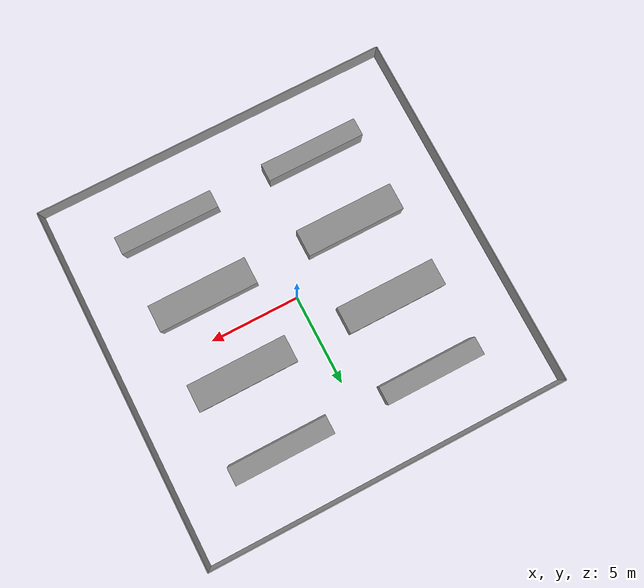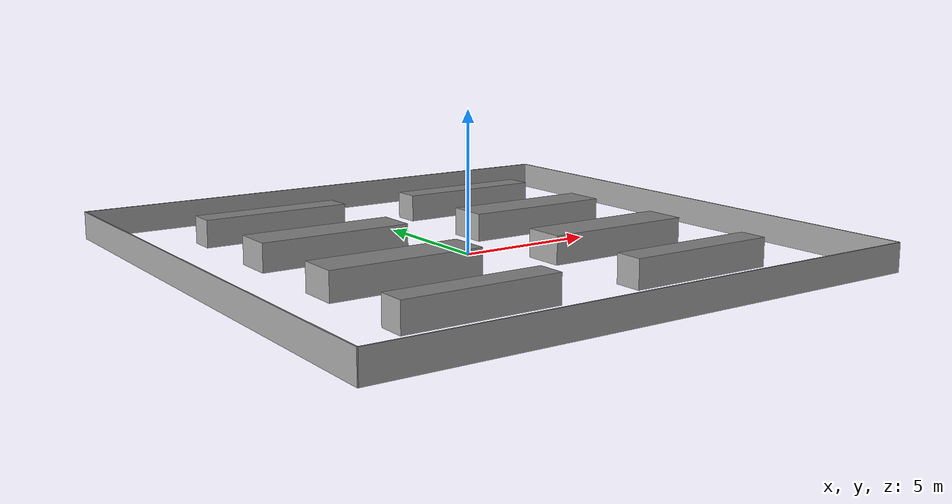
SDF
<?xml version='1.0'?>
<sdf version='1.5'>
  <model name='project_wall'>
    <pose frame=''>0 0 0 0 0 0</pose>
    <link name='Wall_1'>
      <collision name='Wall_1_Collision'>
        <geometry>
          <box>
            <size>20 0.05 1</size>
          </box>
        </geometry>
        <pose frame=''>0 0 0.5 0 0 0</pose>
        <surface>
          <friction>
            <ode>
              <mu>0</mu>
              <mu2>0</mu2>
              <slip1>0</slip1>
              <slip2>0</slip2>
            </ode>
          </friction>
        </surface>
      </collision>
      <visual name='Wall_1_Visual'>
        <pose frame=''>0 0 0.5 0 0 0</pose>
        <geometry>
          <box>
            <size>20 0.05 1</size>
          </box>
        </geometry>
        <material>
          <script>
            <uri>file://media/materials/scripts/gazebo.material</uri>
            <name>Gazebo/Grey</name>
          </script>
          <ambient>1 1 1 1</ambient>
        </material>
      </visual>
      <pose frame=''>0 10 0 0 0 0</pose>
    </link>
    <link name='Wall_2'>
      <collision name='Wall_2_Collision'>
        <geometry>
          <box>
            <size>20 0.05 1</size>
          </box>
        </geometry>
        <pose frame=''>0 0 0.5 0 0 0</pose>
        <surface>
          <friction>
            <ode>
              <mu>0</mu>
              <mu2>0</mu2>
              <slip1>0</slip1>
              <slip2>0</slip2>
            </ode>
          </friction>
        </surface>
      </collision>
      <visual name='Wall_2_Visual'>
        <pose frame=''>0 0 0.5 0 0 0</pose>
        <geometry>
          <box>
            <size>20 0.05 1</size>
          </box>
        </geometry>
        <material>
          <script>
            <uri>file://media/materials/scripts/gazebo.material</uri>
            <name>Gazebo/Grey</name>
          </script>
          <ambient>1 1 1 1</ambient>
        </material>
      </visual>
      <pose frame=''>0 -10 0 0 0 0</pose>
    </link>
    <link name='Wall_3'>
      <collision name='Wall_3_Collision'>
        <geometry>
          <box>
            <size>20 0.05 1</size>
          </box>
        </geometry>
        <pose frame=''>0 0 0.5 0 0 0</pose>
        <surface>
          <friction>
            <ode>
              <mu>0</mu>
              <mu2>0</mu2>
              <slip1>0</slip1>
              <slip2>0</slip2>
            </ode>
          </friction>
        </surface>
      </collision>
      <visual name='Wall_3_Visual'>
        <pose frame=''>0 0 0.5 0 0 0</pose>
        <geometry>
          <box>
            <size>20 0.05 1</size>
          </box>
        </geometry>
        <material>
          <script>
            <uri>file://media/materials/scripts/gazebo.material</uri>
            <name>Gazebo/Grey</name>
          </script>
          <ambient>1 1 1 1</ambient>
        </material>
      </visual>
      <pose frame=''>10 0 0 0 0 1.5708</pose>
    </link>
    <link name='Wall_4'>
      <collision name='Wall_4_Collision'>
        <geometry>
          <box>
            <size>20 0.05 1</size>
          </box>
        </geometry>
        <pose frame=''>0 0 0.5 0 0 0</pose>
        <surface>
          <friction>
            <ode>
              <mu>0</mu>
              <mu2>0</mu2>
              <slip1>0</slip1>
              <slip2>0</slip2>
            </ode>
          </friction>
        </surface>
      </collision>
      <visual name='Wall_4_Visual'>
        <pose frame=''>0 0 0.5 0 0 0</pose>
        <geometry>
          <box>
            <size>20 0.05 1</size>
          </box>
        </geometry>
        <material>
          <script>
            <uri>file://media/materials/scripts/gazebo.material</uri>
            <name>Gazebo/Grey</name>
          </script>
          <ambient>1 1 1 1</ambient>
        </material>
      </visual>
      <pose frame=''>-10 0 0 0 0 1.5708</pose>
    </link>

    <!-- Shelves -->
    <link name='shelf_1'>
      <collision name='shelf_1_Collision'>
        <geometry>
          <box>
            <size>5.5 1 1</size>
          </box>
        </geometry>
        <pose frame=''>0 0 0.5 0 0 0</pose>
        <surface>
          <friction>
            <ode>
              <mu>0</mu>
              <mu2>0</mu2>
              <slip1>0</slip1>
              <slip2>0</slip2>
            </ode>
          </friction>
        </surface>
      </collision>
      <visual name='shelf_1_Visual'>
        <pose frame=''>0 0 0.5 0 0 0</pose>
        <geometry>
          <box>
            <size>5.5 1 1</size>
          </box>
        </geometry>
        <material>
          <script>
            <uri>file://media/materials/scripts/gazebo.material</uri>
            <name>Gazebo/Grey</name>
          </script>
          <ambient>1 1 1 1</ambient>
        </material>
      </visual>
      <pose frame=''>4.25 6.5 0 0 0 0</pose>
    </link>
    <link name='shelf_2'>
      <collision name='shelf_2_Collision'>
        <geometry>
          <box>
            <size>5.5 1 1</size>
          </box>
        </geometry>
        <pose frame=''>0 0 0.5 0 0 0</pose>
        <surface>
          <friction>
            <ode>
              <mu>0</mu>
              <mu2>0</mu2>
              <slip1>0</slip1>
              <slip2>0</slip2>
            </ode>
          </friction>
        </surface>
      </collision>
      <visual name='shelf_2_Visual'>
        <pose frame=''>0 0 0.5 0 0 0</pose>
        <geometry>
          <box>
            <size>5.5 1 1</size>
          </box>
        </geometry>
        <material>
          <script>
            <uri>file://media/materials/scripts/gazebo.material</uri>
            <name>Gazebo/Grey</name>
          </script>
          <ambient>1 1 1 1</ambient>
        </material>
      </visual>
      <pose frame=''>-4.25 6.5 0 0 0 0</pose>
    </link>

    <link name='shelf_3'>
      <collision name='shelf_3_Collision'>
        <geometry>
          <box>
            <size>5.5 1.5 1</size>
          </box>
        </geometry>
        <pose frame=''>0 0 0.5 0 0 0</pose>
        <surface>
          <friction>
            <ode>
              <mu>0</mu>
              <mu2>0</mu2>
              <slip1>0</slip1>
              <slip2>0</slip2>
            </ode>
          </friction>
        </surface>
      </collision>
      <visual name='shelf_3_Visual'>
        <pose frame=''>0 0 0.5 0 0 0</pose>
        <geometry>
          <box>
            <size>5.5 1.5 1</size>
          </box>
        </geometry>
        <material>
          <script>
            <uri>file://media/materials/scripts/gazebo.material</uri>
            <name>Gazebo/Grey</name>
          </script>
          <ambient>1 1 1 1</ambient>
        </material>
      </visual>
      <pose frame=''>4.25 2.25 0 0 0 0</pose>
    </link>
    <link name='shelf_4'>
      <collision name='shelf_4_Collision'>
        <geometry>
          <box>
            <size>5.5 1.5 1</size>
          </box>
        </geometry>
        <pose frame=''>0 0 0.5 0 0 0</pose>
        <surface>
          <friction>
            <ode>
              <mu>0</mu>
              <mu2>0</mu2>
              <slip1>0</slip1>
              <slip2>0</slip2>
            </ode>
          </friction>
        </surface>
      </collision>
      <visual name='shelf_4_Visual'>
        <pose frame=''>0 0 0.5 0 0 0</pose>
        <geometry>
          <box>
            <size>5.5 1.5 1</size>
          </box>
        </geometry>
        <material>
          <script>
            <uri>file://media/materials/scripts/gazebo.material</uri>
            <name>Gazebo/Grey</name>
          </script>
          <ambient>1 1 1 1</ambient>
        </material>
      </visual>
      <pose frame=''>-4.25 2.25 0 0 0 0</pose>
    </link>

    <link name='shelf_5'>
      <collision name='shelf_5_Collision'>
        <geometry>
          <box>
            <size>5.5 1.5 1</size>
          </box>
        </geometry>
        <pose frame=''>0 0 0.5 0 0 0</pose>
        <surface>
          <friction>
            <ode>
              <mu>0</mu>
              <mu2>0</mu2>
              <slip1>0</slip1>
              <slip2>0</slip2>
            </ode>
          </friction>
        </surface>
      </collision>
      <visual name='shelf_5_Visual'>
        <pose frame=''>0 0 0.5 0 0 0</pose>
        <geometry>
          <box>
            <size>5.5 1.5 1</size>
          </box>
        </geometry>
        <material>
          <script>
            <uri>file://media/materials/scripts/gazebo.material</uri>
            <name>Gazebo/Grey</name>
          </script>
          <ambient>1 1 1 1</ambient>
        </material>
      </visual>
      <pose frame=''>4.25 -2.25 0 0 0 0</pose>
    </link>
    <link name='shelf_6'>
      <collision name='shelf_6_Collision'>
        <geometry>
          <box>
            <size>5.5 1.5 1</size>
          </box>
        </geometry>
        <pose frame=''>0 0 0.5 0 0 0</pose>
        <surface>
          <friction>
            <ode>
              <mu>0</mu>
              <mu2>0</mu2>
              <slip1>0</slip1>
              <slip2>0</slip2>
            </ode>
          </friction>
        </surface>
      </collision>
      <visual name='shelf_6_Visual'>
        <pose frame=''>0 0 0.5 0 0 0</pose>
        <geometry>
          <box>
            <size>5.5 1.5 1</size>
          </box>
        </geometry>
        <material>
          <script>
            <uri>file://media/materials/scripts/gazebo.material</uri>
            <name>Gazebo/Grey</name>
          </script>
          <ambient>1 1 1 1</ambient>
        </material>
      </visual>
      <pose frame=''>-4.25 -2.25 0 0 0 0</pose>
    </link>

    <link name='shelf_7'>
      <collision name='shelf_7_Collision'>
        <geometry>
          <box>
            <size>5.5 1 1</size>
          </box>
        </geometry>
        <pose frame=''>0 0 0.5 0 0 0</pose>
        <surface>
          <friction>
            <ode>
              <mu>0</mu>
              <mu2>0</mu2>
              <slip1>0</slip1>
              <slip2>0</slip2>
            </ode>
          </friction>
        </surface>
      </collision>
      <visual name='shelf_7_Visual'>
        <pose frame=''>0 0 0.5 0 0 0</pose>
        <geometry>
          <box>
            <size>5.5 1 1</size>
          </box>
        </geometry>
        <material>
          <script>
            <uri>file://media/materials/scripts/gazebo.material</uri>
            <name>Gazebo/Grey</name>
          </script>
          <ambient>1 1 1 1</ambient>
        </material>
      </visual>
      <pose frame=''>4.25 -6.5 0 0 0 0</pose>
    </link>
    <link name='shelf_8'>
      <collision name='shelf_8_Collision'>
        <geometry>
          <box>
            <size>5.5 1 1</size>
          </box>
        </geometry>
        <pose frame=''>0 0 0.5 0 0 0</pose>
        <surface>
          <friction>
            <ode>
              <mu>0</mu>
              <mu2>0</mu2>
              <slip1>0</slip1>
              <slip2>0</slip2>
            </ode>
          </friction>
        </surface>
      </collision>
      <visual name='shelf_8_Visual'>
        <pose frame=''>0 0 0.5 0 0 0</pose>
        <geometry>
          <box>
            <size>5.5 1 1</size>
          </box>
        </geometry>
        <material>
          <script>
            <uri>file://media/materials/scripts/gazebo.material</uri>
            <name>Gazebo/Grey</name>
          </script>
          <ambient>1 1 1 1</ambient>
        </material>
      </visual>
      <pose frame=''>-4.25 -6.5 0 0 0 0</pose>
    </link>

    <static>1</static>
  </model>
</sdf>
